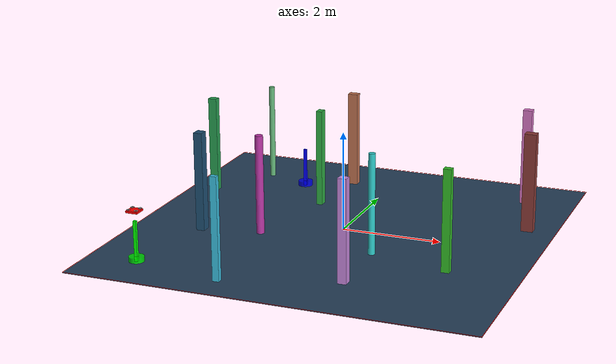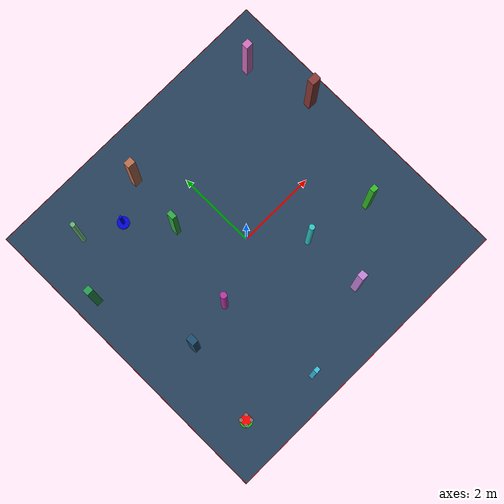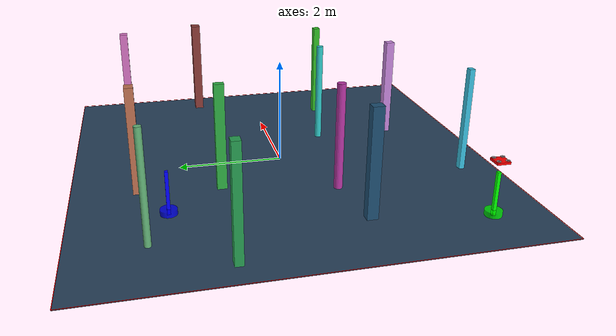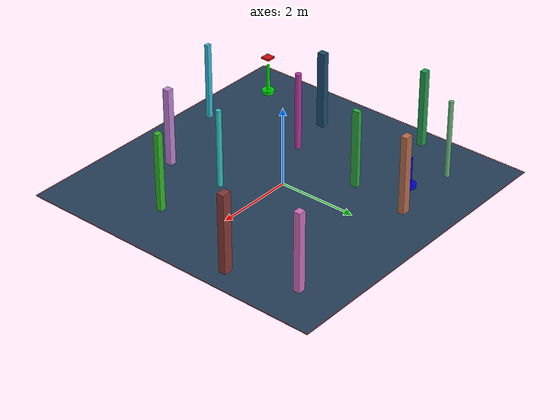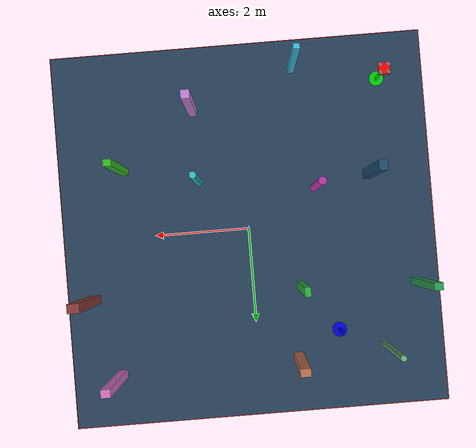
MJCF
<?xml version='1.0' encoding='utf-8'?>
<mujoco model="complex_uav_env">
  <compiler angle="degree" coordinate="local" inertiafromgeom="true" />
  <option integrator="RK4" timestep="0.01" />

  <visual>
    <headlight diffuse="0.6 0.6 0.6" ambient="0.3 0.3 0.3" />
    <rgba haze="0.15 0.25 0.35 1" />
    <global offwidth="2560" offheight="1440" />
  </visual>

  <asset>
    <texture type="skybox" builtin="gradient" rgb1="0.3 0.5 0.7" rgb2="0 0 0" width="512" height="3072" />
    <texture name="grid" type="2d" builtin="checker" rgb1="0.1 0.2 0.3" rgb2="0.2 0.3 0.4" width="512" height="512" />
    <material name="grid" texture="grid" texrepeat="1 1" />
  </asset>

  <worldbody>

    <geom name="ground" type="plane" size="4.0 4.0 0.1" material="grid" />
    <light name="light1" pos="0 0 4" dir="0 0 -1" diffuse="1 1 1" />

    <geom name="start_marker" type="cylinder" size="0.15 0.05" pos="-3.0 -3.0 0.05" rgba="0 1 0 0.8" />
    <geom name="start_pole" type="box" size="0.03 0.03 0.4" pos="-3.0 -3.0 0.4" rgba="0 1 0 1" />

    <geom name="goal_marker" type="cylinder" size="0.15 0.05" pos="-1.7732902275073268 2.3181944466620994 0.05" rgba="0 0 1 0.8" />
    <geom name="goal_pole" type="box" size="0.03 0.03 0.4" pos="-1.7732902275073268 2.3181944466620994 0.4" rgba="0 0 1 1" />

    <body name="chassis" pos="-3.0 -3.0 1.0">
      <joint type="free" name="root" />
      <geom type="box" size="0.12 0.12 0.02" rgba="1.0 0.0 0.0 1.0" mass="0.8" />

      <geom type="box" size="0.08 0.01 0.005" pos="0 0 0.01" rgba="0.3 0.3 0.3 1" />
      <geom type="box" size="0.01 0.08 0.005" pos="0 0 0.01" rgba="0.3 0.3 0.3 1" />

      <geom type="cylinder" size="0.015 0.02" pos="0.08 0.08 0.015" rgba="0.2 0.2 0.2 1" />
      <geom type="cylinder" size="0.015 0.02" pos="-0.08 0.08 0.015" rgba="0.2 0.2 0.2 1" />
      <geom type="cylinder" size="0.015 0.02" pos="0.08 -0.08 0.015" rgba="0.2 0.2 0.2 1" />
      <geom type="cylinder" size="0.015 0.02" pos="-0.08 -0.08 0.015" rgba="0.2 0.2 0.2 1" />

      <geom type="cylinder" size="0.04 0.002" pos="0.08 0.08 0.035" rgba="0.7 0.7 0.7 0.8" />
      <geom type="cylinder" size="0.04 0.002" pos="-0.08 0.08 0.035" rgba="0.7 0.7 0.7 0.8" />
      <geom type="cylinder" size="0.04 0.002" pos="0.08 -0.08 0.035" rgba="0.7 0.7 0.7 0.8" />
      <geom type="cylinder" size="0.04 0.002" pos="-0.08 -0.08 0.035" rgba="0.7 0.7 0.7 0.8" />

      <site name="motor1" pos="0.08 0.08 0" size="0.01" />
      <site name="motor2" pos="-0.08 0.08 0" size="0.01" />
      <site name="motor3" pos="0.08 -0.08 0" size="0.01" />
      <site name="motor4" pos="-0.08 -0.08 0" size="0.01" />
    </body>
    <geom name="test_obs_0" type="box" size="0.08504380763047087 0.08418148800931949 1.0" pos="1.0010334262317278 -2.6029844599304806 1.0" rgba="0.7644273316298833 0.5183546580471219 0.8481722334477214 1.0" />
    <geom name="test_obs_1" type="cylinder" size="0.06728838392490823 1.0" pos="0.9776904654281026 -1.0658378904818184 1.0" rgba="0.18005746441131665 0.781051517132873 0.7768711029972034 1.0" />
    <geom name="test_obs_2" type="box" size="0.09385316235673649 0.08064378971356467 1.0" pos="2.9377972819317426 2.904723216228371 1.0" rgba="0.8212826798104235 0.4413590638546111 0.7464214171428963 1.0" />
    <geom name="test_obs_3" type="box" size="0.06418735799448531 0.05191823135977365 1.0" pos="-1.1754994020718406 -3.337706324516471 1.0" rgba="0.223456254317669 0.7459894267472419 0.8700397198036662 1.0" />
    <geom name="test_obs_4" type="box" size="0.08809534037242953 0.07388969260505934 1.0" pos="-3.4757828769085797 1.406260670314928 1.0" rgba="0.14774371759902377 0.6101156968305622 0.31125749188312596 1.0" />
    <geom name="test_obs_5" type="box" size="0.1033651241032311 0.07924976266722414 1.0" pos="-0.849206966938181 2.818587771715776 1.0" rgba="0.7317422107318773 0.4361782414677534 0.3114835172787066 1.0" />
    <geom name="test_obs_6" type="box" size="0.06129257481905104 0.09118865242019081 1.0" pos="-1.0126179557521024 1.3114172573468377 1.0" rgba="0.17815688994930534 0.6708910346564116 0.26101801236493155 1.0" />
    <geom name="test_obs_7" type="box" size="0.1195665855578897 0.09068733566537099 1.0" pos="3.4193063872013787 1.2648363018440483 1.0" rgba="0.5321465355735426 0.22561739760266672 0.21154304194605197 1.0" />
    <geom name="test_obs_8" type="cylinder" size="0.07990167313931801 1.0" pos="-1.4616138179957976 -0.7591839040457394 1.0" rgba="0.708928531461427 0.2041463152820412 0.6320214320453534 1.0" />
    <geom name="test_obs_9" type="box" size="0.07846726494423117 0.06650085521883417 1.0" pos="2.5709949060677237 -1.4282048129534002 1.0" rgba="0.19763341291622183 0.7269306345825832 0.1498341404903516 1.0" />
    <geom name="test_obs_10" type="box" size="0.08598207668903361 0.10030969408158541 1.0" pos="-2.630607398716653 -0.9661799318605965 1.0" rgba="0.11189144893890948 0.3025290979610814 0.4409720301270065 1.0" />
    <geom name="test_obs_11" type="cylinder" size="0.0593257215564157 1.0" pos="-2.7066715660344176 2.699370592229653 1.0" rgba="0.3909308507138326 0.7053262574058511 0.4712330083080708 1.0" />
  <geom name="boundary_north" type="box" size="4.0 0.005 0.002" pos="0 4.0 0.002" rgba="1.0 0.0 0.0 1.0" /><geom name="boundary_south" type="box" size="4.0 0.005 0.002" pos="0 -4.0 0.002" rgba="1.0 0.0 0.0 1.0" /><geom name="boundary_east" type="box" size="0.005 4.0 0.002" pos="4.0 0 0.002" rgba="1.0 0.0 0.0 1.0" /><geom name="boundary_west" type="box" size="0.005 4.0 0.002" pos="-4.0 0 0.002" rgba="1.0 0.0 0.0 1.0" /></worldbody>

  <actuator>
    <motor name="m1" gear="0 0 1 0 0 0" site="motor1" />
    <motor name="m2" gear="0 0 1 0 0 0" site="motor2" />
    <motor name="m3" gear="0 0 1 0 0 0" site="motor3" />
    <motor name="m4" gear="0 0 1 0 0 0" site="motor4" />
  </actuator>
</mujoco>
